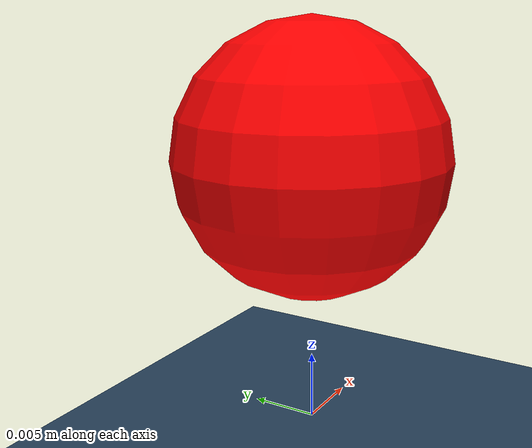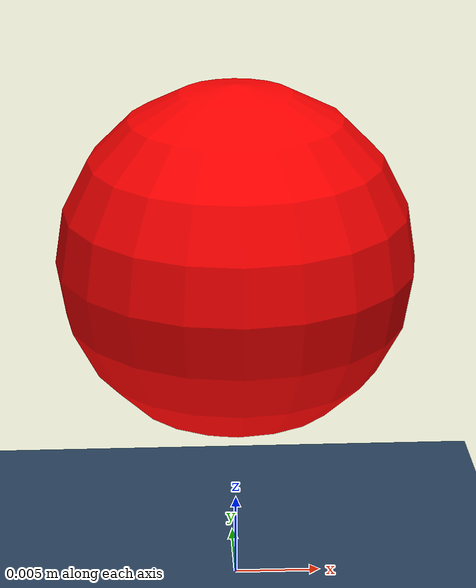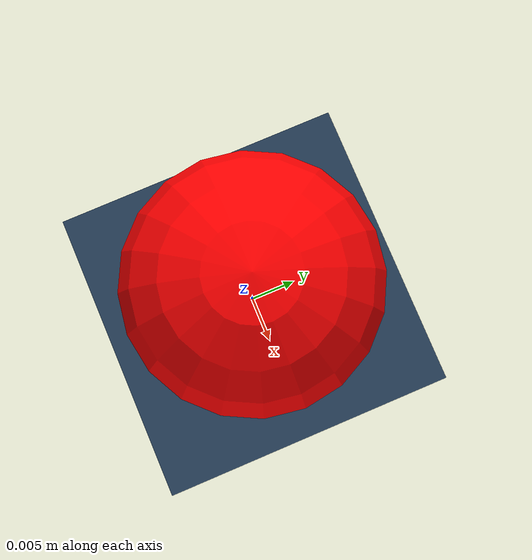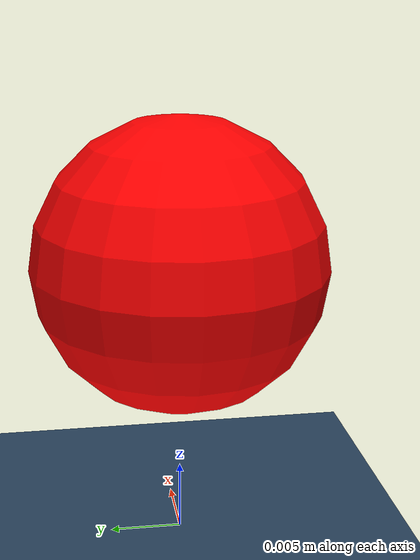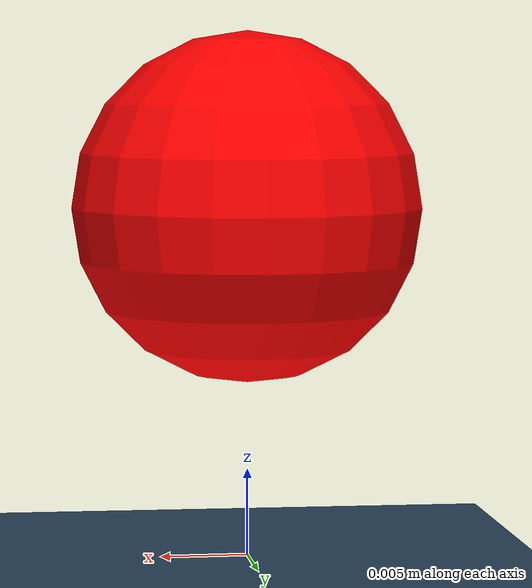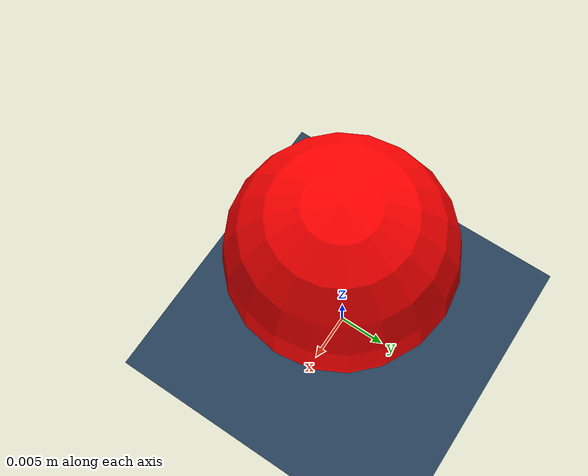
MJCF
<mujoco>

    <option integrator = "RK4" timestep = "0.00001"
            jacobian = "dense" cone = "elliptic"
            solver = "Newton" tolerance="1e-15"
            noslip_iterations="0" noslip_tolerance="1e-6" >
        <flag energy="enable" fwdinv="enable" />
    </option>

	  <visual>
    <headlight diffuse="0.6 0.6 0.6" ambient="0.1 0.1 0.1" specular="0 0 0"/>
    <global azimuth="120" elevation="-20"/>
  </visual>

  <asset>
        <texture type="skybox" builtin="gradient" rgb1=".3 .5 .7" rgb2="0 0 0" width="512" height="512"/>
        <texture name="grid" type="2d" builtin="checker" width="512" height="512" rgb1=".1 .2 .3" rgb2=".2 .3 .4"/>
        <material name="grid" texture="grid" texrepeat="1 1" texuniform="true" reflectance=".2"/>
  </asset>

	<worldbody>
   <geom name="def-plane" type="plane" material="grid" pos="0 0 -0.0" size="0.5 0.5 0.01" contype="1" conaffinity="1" priority="1"/>
		<body name ="com" pos="0 0 0.02" euler="0 0 0">
			<joint type="free"/>
			<geom type="sphere" pos="0 0 -0.0" mass="1" size="0.01"  contype="1" conaffinity="1" rgba="1 0 0 1"/>
		</body>
	</worldbody>
</mujoco>
